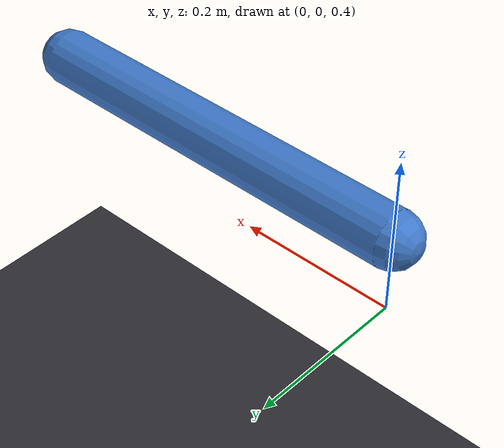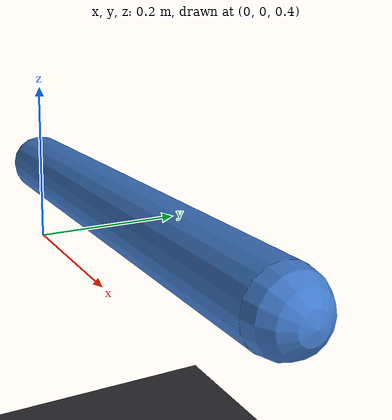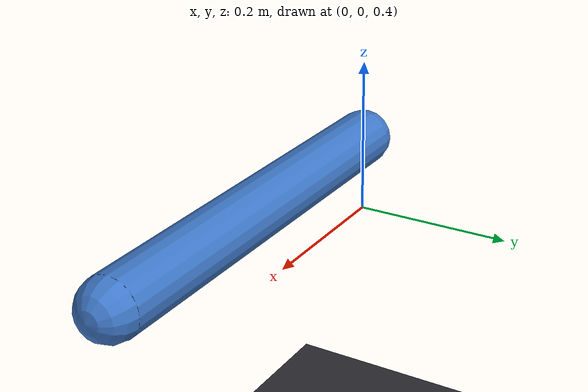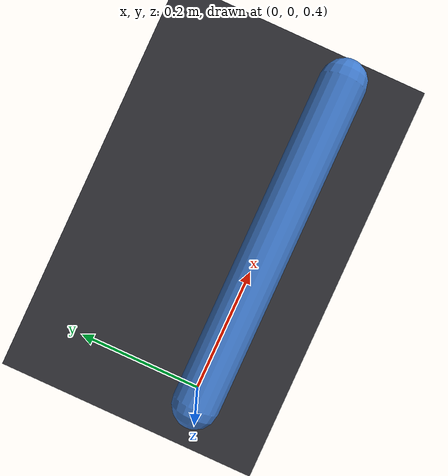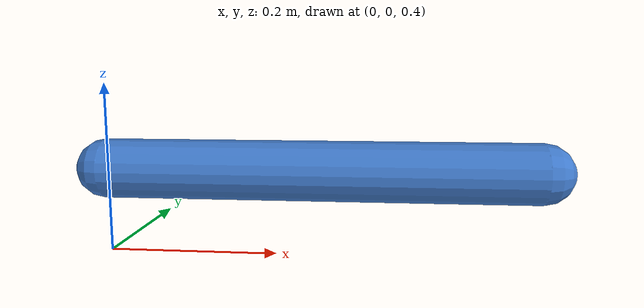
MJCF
<mujoco model="short_arm_seeded_failure">
  <compiler angle="radian" autolimits="true"/>
  <option timestep="0.002" gravity="0 0 -9.81" integrator="implicitfast"/>
  <default>
    <joint damping="2" armature="0.05"/>
    <geom density="600" rgba="0.25 0.48 0.80 1"/>
  </default>
  <worldbody>
    <geom name="floor" type="plane" size="2 2 0.05" rgba="0.18 0.18 0.20 1"/>
    <body name="arm" pos="0 0 0.5">
      <joint name="shoulder" type="hinge" axis="0 0 1" range="-1.57 1.57"/>
      <geom name="arm_link" type="capsule" fromto="0 0 0 0.5 0 0" size="0.035"/>
      <site name="end_effector" pos="0.5 0 0" size="0.025" rgba="0.95 0.30 0.20 1"/>
    </body>
  </worldbody>
  <actuator>
    <position name="shoulder_position" joint="shoulder" kp="60" ctrlrange="-1.57 1.57" forcerange="-20 20"/>
  </actuator>
</mujoco>
